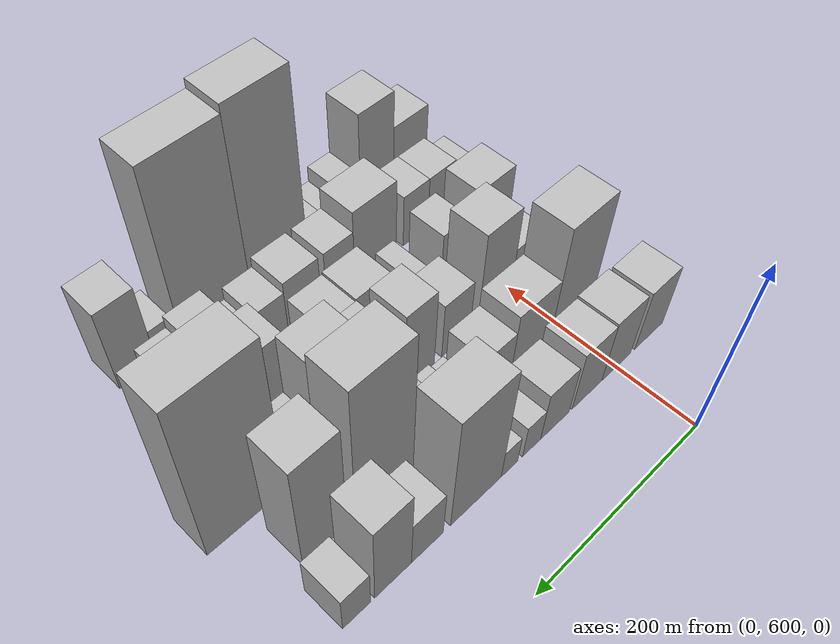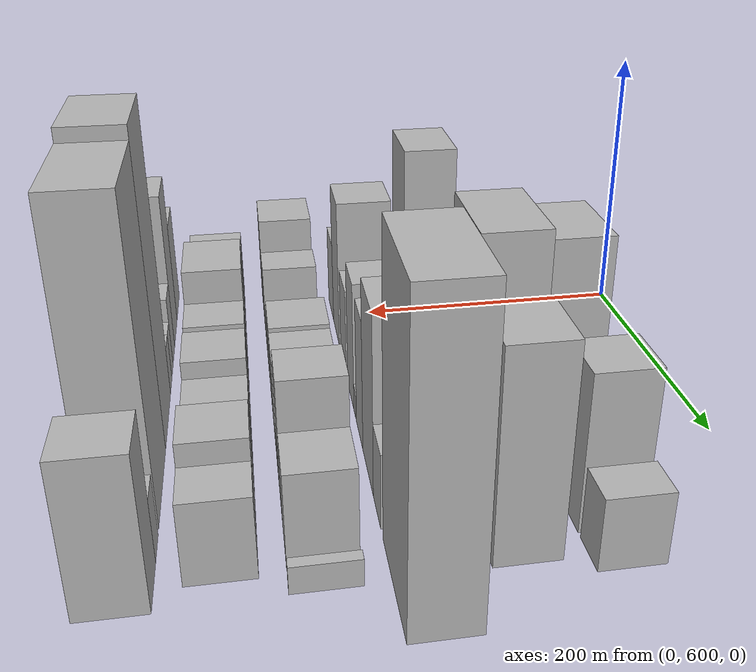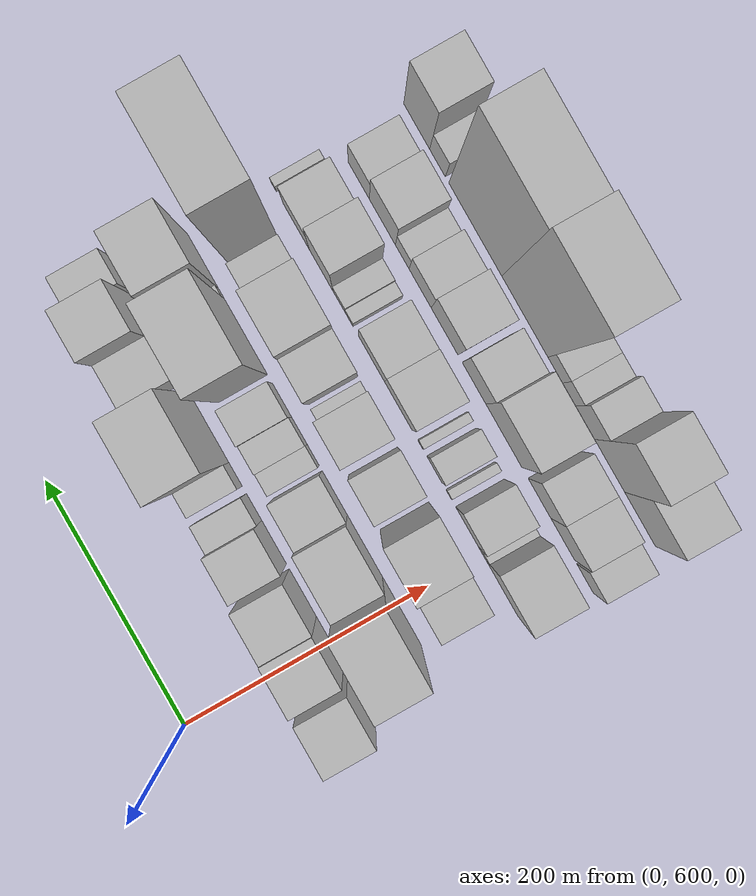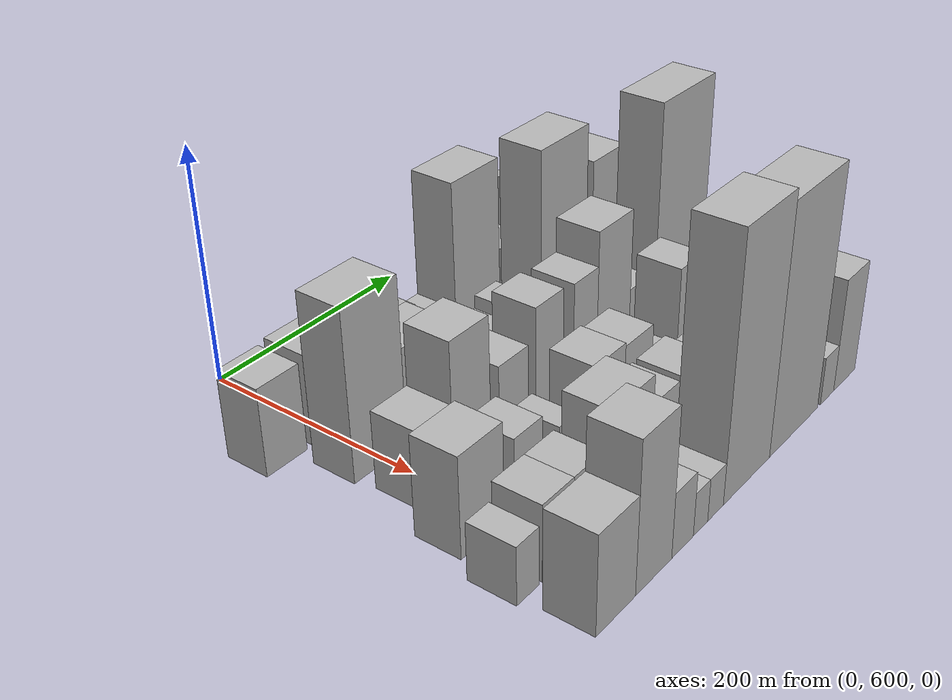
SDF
<sdf version="1.6">
 <world name="default">
  <model name="building_38">
   <static>1</static>
   <pose>100.0000 555.1416 0 0.000000 0.000000 0.000000</pose>
   <link name="link">
    <pose>0 0 37.50 0 0 0</pose>
    <collision name="collision"><geometry><box><size>40.0000 39.9015 75.0000</size></box></geometry></collision>
    <visual name="visual">
     <cast_shadows>0</cast_shadows>
     <geometry><box><size>40.0000 39.9015 75.0000</size></box></geometry>
     <material>
      <script>
       <uri>model://HANNAS_wall/materials/scripts</uri>
       <uri>model://HANNAS_wall/materials/textures</uri>
       <name>vrc/HANNAS_wall</name>
      </script>
     </material>
    </visual>
   </link>
  </model>
  <model name="building_39">
   <static>1</static>
   <pose>100.0000 600.7138 0 0.000000 0.000000 0.000000</pose>
   <link name="link">
    <pose>0 0 39.00 0 0 0</pose>
    <collision name="collision"><geometry><box><size>40.0000 39.2430 78.0000</size></box></geometry></collision>
    <visual name="visual">
     <cast_shadows>0</cast_shadows>
     <geometry><box><size>40.0000 39.2430 78.0000</size></box></geometry>
     <material>
      <script>
       <uri>model://HANNAS_wall/materials/scripts</uri>
       <uri>model://HANNAS_wall/materials/textures</uri>
       <name>vrc/HANNAS_wall</name>
      </script>
     </material>
    </visual>
   </link>
  </model>
  <model name="building_40">
   <static>1</static>
   <pose>100.0000 639.8418 0 0.000000 0.000000 0.000000</pose>
   <link name="link">
    <pose>0 0 37.50 0 0 0</pose>
    <collision name="collision"><geometry><box><size>40.0000 39.0130 75.0000</size></box></geometry></collision>
    <visual name="visual">
     <cast_shadows>0</cast_shadows>
     <geometry><box><size>40.0000 39.0130 75.0000</size></box></geometry>
     <material>
      <script>
       <uri>model://HANNAS_wall/materials/scripts</uri>
       <uri>model://HANNAS_wall/materials/textures</uri>
       <name>vrc/HANNAS_wall</name>
      </script>
     </material>
    </visual>
   </link>
  </model>
  <model name="building_41">
   <static>1</static>
   <pose>100.0000 681.1982 0 0.000000 0.000000 0.000000</pose>
   <link name="link">
    <pose>0 0 31.50 0 0 0</pose>
    <collision name="collision"><geometry><box><size>40.0000 35.6999 63.0000</size></box></geometry></collision>
    <visual name="visual">
     <cast_shadows>0</cast_shadows>
     <geometry><box><size>40.0000 35.6999 63.0000</size></box></geometry>
     <material>
      <script>
       <uri>model://HANNAS_wall/materials/scripts</uri>
       <uri>model://HANNAS_wall/materials/textures</uri>
       <name>vrc/HANNAS_wall</name>
      </script>
     </material>
    </visual>
   </link>
  </model>
  <model name="building_42">
   <static>1</static>
   <pose>100.0000 710.0597 0 0.000000 0.000000 0.000000</pose>
   <link name="link">
    <pose>0 0 21.00 0 0 0</pose>
    <collision name="collision"><geometry><box><size>40.0000 22.0230 42.0000</size></box></geometry></collision>
    <visual name="visual">
     <cast_shadows>0</cast_shadows>
     <geometry><box><size>40.0000 22.0230 42.0000</size></box></geometry>
     <material>
      <script>
       <uri>model://HANNAS_wall/materials/scripts</uri>
       <uri>model://HANNAS_wall/materials/textures</uri>
       <name>vrc/HANNAS_wall</name>
      </script>
     </material>
    </visual>
   </link>
  </model>
  <model name="building_43">
   <static>1</static>
   <pose>100.0000 736.7311 0 0.000000 0.000000 0.000000</pose>
   <link name="link">
    <pose>0 0 18.00 0 0 0</pose>
    <collision name="collision"><geometry><box><size>40.0000 19.3199 36.0000</size></box></geometry></collision>
    <visual name="visual">
     <cast_shadows>0</cast_shadows>
     <geometry><box><size>40.0000 19.3199 36.0000</size></box></geometry>
     <material>
      <script>
       <uri>model://HANNAS_wall/materials/scripts</uri>
       <uri>model://HANNAS_wall/materials/textures</uri>
       <name>vrc/HANNAS_wall</name>
      </script>
     </material>
    </visual>
   </link>
  </model>
  <model name="building_44">
   <static>1</static>
   <pose>100.0000 775.1421 0 0.000000 0.000000 0.000000</pose>
   <link name="link">
    <pose>0 0 73.50 0 0 0</pose>
    <collision name="collision"><geometry><box><size>40.0000 57.5021 147.0000</size></box></geometry></collision>
    <visual name="visual">
     <cast_shadows>0</cast_shadows>
     <geometry><box><size>40.0000 57.5021 147.0000</size></box></geometry>
     <material>
      <script>
       <uri>model://HANNAS_wall/materials/scripts</uri>
       <uri>model://HANNAS_wall/materials/textures</uri>
       <name>vrc/HANNAS_wall</name>
      </script>
     </material>
    </visual>
   </link>
  </model>
  <model name="building_45">
   <static>1</static>
   <pose>100.0000 828.8393 0 0.000000 0.000000 0.000000</pose>
   <link name="link">
    <pose>0 0 30.00 0 0 0</pose>
    <collision name="collision"><geometry><box><size>40.0000 33.8922 60.0000</size></box></geometry></collision>
    <visual name="visual">
     <cast_shadows>0</cast_shadows>
     <geometry><box><size>40.0000 33.8922 60.0000</size></box></geometry>
     <material>
      <script>
       <uri>model://HANNAS_wall/materials/scripts</uri>
       <uri>model://HANNAS_wall/materials/textures</uri>
       <name>vrc/HANNAS_wall</name>
      </script>
     </material>
    </visual>
   </link>
  </model>
  <model name="building_46">
   <static>1</static>
   <pose>100.0000 864.5744 0 0.000000 0.000000 0.000000</pose>
   <link name="link">
    <pose>0 0 52.50 0 0 0</pose>
    <collision name="collision"><geometry><box><size>40.0000 37.5782 105.0000</size></box></geometry></collision>
    <visual name="visual">
     <cast_shadows>0</cast_shadows>
     <geometry><box><size>40.0000 37.5782 105.0000</size></box></geometry>
     <material>
      <script>
       <uri>model://HANNAS_wall/materials/scripts</uri>
       <uri>model://HANNAS_wall/materials/textures</uri>
       <name>vrc/HANNAS_wall</name>
      </script>
     </material>
    </visual>
   </link>
  </model>
  <model name="building_47">
   <static>1</static>
   <pose>100.0000 901.0511 0 0.000000 0.000000 0.000000</pose>
   <link name="link">
    <pose>0 0 24.00 0 0 0</pose>
    <collision name="collision"><geometry><box><size>40.0000 27.3753 48.0000</size></box></geometry></collision>
    <visual name="visual">
     <cast_shadows>0</cast_shadows>
     <geometry><box><size>40.0000 27.3753 48.0000</size></box></geometry>
     <material>
      <script>
       <uri>model://HANNAS_wall/materials/scripts</uri>
       <uri>model://HANNAS_wall/materials/textures</uri>
       <name>vrc/HANNAS_wall</name>
      </script>
     </material>
    </visual>
   </link>
  </model>
  <model name="building_90">
   <static>1</static>
   <pose>155.0000 594.1640 0 0.000000 0.000000 0.000000</pose>
   <link name="link">
    <pose>0 0 72.00 0 0 0</pose>
    <collision name="collision"><geometry><box><size>40.0000 55.7255 144.0000</size></box></geometry></collision>
    <visual name="visual">
     <cast_shadows>0</cast_shadows>
     <geometry><box><size>40.0000 55.7255 144.0000</size></box></geometry>
     <material>
      <script>
       <uri>model://HANNAS_wall/materials/scripts</uri>
       <uri>model://HANNAS_wall/materials/textures</uri>
       <name>vrc/HANNAS_wall</name>
      </script>
     </material>
    </visual>
   </link>
  </model>
  <model name="building_91">
   <static>1</static>
   <pose>155.0000 647.2074 0 0.000000 0.000000 0.000000</pose>
   <link name="link">
    <pose>0 0 42.00 0 0 0</pose>
    <collision name="collision"><geometry><box><size>40.0000 50.3614 84.0000</size></box></geometry></collision>
    <visual name="visual">
     <cast_shadows>0</cast_shadows>
     <geometry><box><size>40.0000 50.3614 84.0000</size></box></geometry>
     <material>
      <script>
       <uri>model://HANNAS_wall/materials/scripts</uri>
       <uri>model://HANNAS_wall/materials/textures</uri>
       <name>vrc/HANNAS_wall</name>
      </script>
     </material>
    </visual>
   </link>
  </model>
  <model name="building_92">
   <static>1</static>
   <pose>155.0000 690.4936 0 0.000000 0.000000 0.000000</pose>
   <link name="link">
    <pose>0 0 31.50 0 0 0</pose>
    <collision name="collision"><geometry><box><size>40.0000 36.2110 63.0000</size></box></geometry></collision>
    <visual name="visual">
     <cast_shadows>0</cast_shadows>
     <geometry><box><size>40.0000 36.2110 63.0000</size></box></geometry>
     <material>
      <script>
       <uri>model://HANNAS_wall/materials/scripts</uri>
       <uri>model://HANNAS_wall/materials/textures</uri>
       <name>vrc/HANNAS_wall</name>
      </script>
     </material>
    </visual>
   </link>
  </model>
  <model name="building_93">
   <static>1</static>
   <pose>155.0000 721.2808 0 0.000000 0.000000 0.000000</pose>
   <link name="link">
    <pose>0 0 16.50 0 0 0</pose>
    <collision name="collision"><geometry><box><size>40.0000 17.3634 33.0000</size></box></geometry></collision>
    <visual name="visual">
     <cast_shadows>0</cast_shadows>
     <geometry><box><size>40.0000 17.3634 33.0000</size></box></geometry>
     <material>
      <script>
       <uri>model://HANNAS_wall/materials/scripts</uri>
       <uri>model://HANNAS_wall/materials/textures</uri>
       <name>vrc/HANNAS_wall</name>
      </script>
     </material>
    </visual>
   </link>
  </model>
  <model name="building_94">
   <static>1</static>
   <pose>155.0000 741.1525 0 0.000000 0.000000 0.000000</pose>
   <link name="link">
    <pose>0 0 19.50 0 0 0</pose>
    <collision name="collision"><geometry><box><size>40.0000 22.3801 39.0000</size></box></geometry></collision>
    <visual name="visual">
     <cast_shadows>0</cast_shadows>
     <geometry><box><size>40.0000 22.3801 39.0000</size></box></geometry>
     <material>
      <script>
       <uri>model://HANNAS_wall/materials/scripts</uri>
       <uri>model://HANNAS_wall/materials/textures</uri>
       <name>vrc/HANNAS_wall</name>
      </script>
     </material>
    </visual>
   </link>
  </model>
  <model name="building_95">
   <static>1</static>
   <pose>155.0000 766.3172 0 0.000000 0.000000 0.000000</pose>
   <link name="link">
    <pose>0 0 25.50 0 0 0</pose>
    <collision name="collision"><geometry><box><size>40.0000 27.9492 51.0000</size></box></geometry></collision>
    <visual name="visual">
     <cast_shadows>0</cast_shadows>
     <geometry><box><size>40.0000 27.9492 51.0000</size></box></geometry>
     <material>
      <script>
       <uri>model://HANNAS_wall/materials/scripts</uri>
       <uri>model://HANNAS_wall/materials/textures</uri>
       <name>vrc/HANNAS_wall</name>
      </script>
     </material>
    </visual>
   </link>
  </model>
  <model name="building_96">
   <static>1</static>
   <pose>155.0000 818.4649 0 0.000000 0.000000 0.000000</pose>
   <link name="link">
    <pose>0 0 87.00 0 0 0</pose>
    <collision name="collision"><geometry><box><size>40.0000 62.3463 174.0000</size></box></geometry></collision>
    <visual name="visual">
     <cast_shadows>0</cast_shadows>
     <geometry><box><size>40.0000 62.3463 174.0000</size></box></geometry>
     <material>
      <script>
       <uri>model://HANNAS_wall/materials/scripts</uri>
       <uri>model://HANNAS_wall/materials/textures</uri>
       <name>vrc/HANNAS_wall</name>
      </script>
     </material>
    </visual>
   </link>
  </model>
  <model name="building_97">
   <static>1</static>
   <pose>155.0000 853.9290 0 0.000000 0.000000 0.000000</pose>
   <link name="link">
    <pose>0 0 10.50 0 0 0</pose>
    <collision name="collision"><geometry><box><size>40.0000 8.5818 21.0000</size></box></geometry></collision>
    <visual name="visual">
     <cast_shadows>0</cast_shadows>
     <geometry><box><size>40.0000 8.5818 21.0000</size></box></geometry>
     <material>
      <script>
       <uri>model://HANNAS_wall/materials/scripts</uri>
       <uri>model://HANNAS_wall/materials/textures</uri>
       <name>vrc/HANNAS_wall</name>
      </script>
     </material>
    </visual>
   </link>
  </model>
  <model name="building_98">
   <static>1</static>
   <pose>155.0000 880.5888 0 0.000000 0.000000 0.000000</pose>
   <link name="link">
    <pose>0 0 69.00 0 0 0</pose>
    <collision name="collision"><geometry><box><size>40.0000 44.7378 138.0000</size></box></geometry></collision>
    <visual name="visual">
     <cast_shadows>0</cast_shadows>
     <geometry><box><size>40.0000 44.7378 138.0000</size></box></geometry>
     <material>
      <script>
       <uri>model://HANNAS_wall/materials/scripts</uri>
       <uri>model://HANNAS_wall/materials/textures</uri>
       <name>vrc/HANNAS_wall</name>
      </script>
     </material>
    </visual>
   </link>
  </model>
  <model name="building_144">
   <static>1</static>
   <pose>210.0000 590.6155 0 0.000000 0.000000 0.000000</pose>
   <link name="link">
    <pose>0 0 33.00 0 0 0</pose>
    <collision name="collision"><geometry><box><size>40.0000 37.5603 66.0000</size></box></geometry></collision>
    <visual name="visual">
     <cast_shadows>0</cast_shadows>
     <geometry><box><size>40.0000 37.5603 66.0000</size></box></geometry>
     <material>
      <script>
       <uri>model://HANNAS_wall/materials/scripts</uri>
       <uri>model://HANNAS_wall/materials/textures</uri>
       <name>vrc/HANNAS_wall</name>
      </script>
     </material>
    </visual>
   </link>
  </model>
  <model name="building_145">
   <static>1</static>
   <pose>210.0000 630.5248 0 0.000000 0.000000 0.000000</pose>
   <link name="link">
    <pose>0 0 58.50 0 0 0</pose>
    <collision name="collision"><geometry><box><size>40.0000 42.2582 117.0000</size></box></geometry></collision>
    <visual name="visual">
     <cast_shadows>0</cast_shadows>
     <geometry><box><size>40.0000 42.2582 117.0000</size></box></geometry>
     <material>
      <script>
       <uri>model://HANNAS_wall/materials/scripts</uri>
       <uri>model://HANNAS_wall/materials/textures</uri>
       <name>vrc/HANNAS_wall</name>
      </script>
     </material>
    </visual>
   </link>
  </model>
  <model name="building_146">
   <static>1</static>
   <pose>210.0000 679.1802 0 0.000000 0.000000 0.000000</pose>
   <link name="link">
    <pose>0 0 34.50 0 0 0</pose>
    <collision name="collision"><geometry><box><size>40.0000 35.0526 69.0000</size></box></geometry></collision>
    <visual name="visual">
     <cast_shadows>0</cast_shadows>
     <geometry><box><size>40.0000 35.0526 69.0000</size></box></geometry>
     <material>
      <script>
       <uri>model://HANNAS_wall/materials/scripts</uri>
       <uri>model://HANNAS_wall/materials/textures</uri>
       <name>vrc/HANNAS_wall</name>
      </script>
     </material>
    </visual>
   </link>
  </model>
  <model name="building_147">
   <static>1</static>
   <pose>210.0000 723.1696 0 0.000000 0.000000 0.000000</pose>
   <link name="link">
    <pose>0 0 48.00 0 0 0</pose>
    <collision name="collision"><geometry><box><size>40.0000 34.9262 96.0000</size></box></geometry></collision>
    <visual name="visual">
     <cast_shadows>0</cast_shadows>
     <geometry><box><size>40.0000 34.9262 96.0000</size></box></geometry>
     <material>
      <script>
       <uri>model://HANNAS_wall/materials/scripts</uri>
       <uri>model://HANNAS_wall/materials/textures</uri>
       <name>vrc/HANNAS_wall</name>
      </script>
     </material>
    </visual>
   </link>
  </model>
  <model name="building_148">
   <static>1</static>
   <pose>210.0000 745.4252 0 0.000000 0.000000 0.000000</pose>
   <link name="link">
    <pose>0 0 10.50 0 0 0</pose>
    <collision name="collision"><geometry><box><size>40.0000 9.5850 21.0000</size></box></geometry></collision>
    <visual name="visual">
     <cast_shadows>0</cast_shadows>
     <geometry><box><size>40.0000 9.5850 21.0000</size></box></geometry>
     <material>
      <script>
       <uri>model://HANNAS_wall/materials/scripts</uri>
       <uri>model://HANNAS_wall/materials/textures</uri>
       <name>vrc/HANNAS_wall</name>
      </script>
     </material>
    </visual>
   </link>
  </model>
  <model name="building_149">
   <static>1</static>
   <pose>210.0000 770.2569 0 0.000000 0.000000 0.000000</pose>
   <link name="link">
    <pose>0 0 46.50 0 0 0</pose>
    <collision name="collision"><geometry><box><size>40.0000 32.0783 93.0000</size></box></geometry></collision>
    <visual name="visual">
     <cast_shadows>0</cast_shadows>
     <geometry><box><size>40.0000 32.0783 93.0000</size></box></geometry>
     <material>
      <script>
       <uri>model://HANNAS_wall/materials/scripts</uri>
       <uri>model://HANNAS_wall/materials/textures</uri>
       <name>vrc/HANNAS_wall</name>
      </script>
     </material>
    </visual>
   </link>
  </model>
  <model name="building_150">
   <static>1</static>
   <pose>210.0000 809.5594 0 0.000000 0.000000 0.000000</pose>
   <link name="link">
    <pose>0 0 61.50 0 0 0</pose>
    <collision name="collision"><geometry><box><size>40.0000 46.5267 123.0000</size></box></geometry></collision>
    <visual name="visual">
     <cast_shadows>0</cast_shadows>
     <geometry><box><size>40.0000 46.5267 123.0000</size></box></geometry>
     <material>
      <script>
       <uri>model://HANNAS_wall/materials/scripts</uri>
       <uri>model://HANNAS_wall/materials/textures</uri>
       <name>vrc/HANNAS_wall</name>
      </script>
     </material>
    </visual>
   </link>
  </model>
  <model name="building_151">
   <static>1</static>
   <pose>210.0000 847.6196 0 0.000000 0.000000 0.000000</pose>
   <link name="link">
    <pose>0 0 25.50 0 0 0</pose>
    <collision name="collision"><geometry><box><size>40.0000 29.5937 51.0000</size></box></geometry></collision>
    <visual name="visual">
     <cast_shadows>0</cast_shadows>
     <geometry><box><size>40.0000 29.5937 51.0000</size></box></geometry>
     <material>
      <script>
       <uri>model://HANNAS_wall/materials/scripts</uri>
       <uri>model://HANNAS_wall/materials/textures</uri>
       <name>vrc/HANNAS_wall</name>
      </script>
     </material>
    </visual>
   </link>
  </model>
  <model name="building_152">
   <static>1</static>
   <pose>210.0000 909.0452 0 0.000000 0.000000 0.000000</pose>
   <link name="link">
    <pose>0 0 99.00 0 0 0</pose>
    <collision name="collision"><geometry><box><size>40.0000 77.2575 198.0000</size></box></geometry></collision>
    <visual name="visual">
     <cast_shadows>0</cast_shadows>
     <geometry><box><size>40.0000 77.2575 198.0000</size></box></geometry>
     <material>
      <script>
       <uri>model://HANNAS_wall/materials/scripts</uri>
       <uri>model://HANNAS_wall/materials/textures</uri>
       <name>vrc/HANNAS_wall</name>
      </script>
     </material>
    </visual>
   </link>
  </model>
  <model name="building_195">
   <static>1</static>
   <pose>265.0000 572.6271 0 0.000000 0.000000 0.000000</pose>
   <link name="link">
    <pose>0 0 42.00 0 0 0</pose>
    <collision name="collision"><geometry><box><size>40.0000 46.0823 84.0000</size></box></geometry></collision>
    <visual name="visual">
     <cast_shadows>0</cast_shadows>
     <geometry><box><size>40.0000 46.0823 84.0000</size></box></geometry>
     <material>
      <script>
       <uri>model://HANNAS_wall/materials/scripts</uri>
       <uri>model://HANNAS_wall/materials/textures</uri>
       <name>vrc/HANNAS_wall</name>
      </script>
     </material>
    </visual>
   </link>
  </model>
  <model name="building_196">
   <static>1</static>
   <pose>265.0000 601.3978 0 0.000000 0.000000 0.000000</pose>
   <link name="link">
    <pose>0 0 13.50 0 0 0</pose>
    <collision name="collision"><geometry><box><size>40.0000 11.4591 27.0000</size></box></geometry></collision>
    <visual name="visual">
     <cast_shadows>0</cast_shadows>
     <geometry><box><size>40.0000 11.4591 27.0000</size></box></geometry>
     <material>
      <script>
       <uri>model://HANNAS_wall/materials/scripts</uri>
       <uri>model://HANNAS_wall/materials/textures</uri>
       <name>vrc/HANNAS_wall</name>
      </script>
     </material>
    </visual>
   </link>
  </model>
  <model name="building_197">
   <static>1</static>
   <pose>265.0000 623.1608 0 0.000000 0.000000 0.000000</pose>
   <link name="link">
    <pose>0 0 31.50 0 0 0</pose>
    <collision name="collision"><geometry><box><size>40.0000 32.0669 63.0000</size></box></geometry></collision>
    <visual name="visual">
     <cast_shadows>0</cast_shadows>
     <geometry><box><size>40.0000 32.0669 63.0000</size></box></geometry>
     <material>
      <script>
       <uri>model://HANNAS_wall/materials/scripts</uri>
       <uri>model://HANNAS_wall/materials/textures</uri>
       <name>vrc/HANNAS_wall</name>
      </script>
     </material>
    </visual>
   </link>
  </model>
  <model name="building_198">
   <static>1</static>
   <pose>265.0000 649.7334 0 0.000000 0.000000 0.000000</pose>
   <link name="link">
    <pose>0 0 7.50 0 0 0</pose>
    <collision name="collision"><geometry><box><size>40.0000 7.0781 15.0000</size></box></geometry></collision>
    <visual name="visual">
     <cast_shadows>0</cast_shadows>
     <geometry><box><size>40.0000 7.0781 15.0000</size></box></geometry>
     <material>
      <script>
       <uri>model://HANNAS_wall/materials/scripts</uri>
       <uri>model://HANNAS_wall/materials/textures</uri>
       <name>vrc/HANNAS_wall</name>
      </script>
     </material>
    </visual>
   </link>
  </model>
  <model name="building_199">
   <static>1</static>
   <pose>265.0000 670.0539 0 0.000000 0.000000 0.000000</pose>
   <link name="link">
    <pose>0 0 21.00 0 0 0</pose>
    <collision name="collision"><geometry><box><size>40.0000 21.5629 42.0000</size></box></geometry></collision>
    <visual name="visual">
     <cast_shadows>0</cast_shadows>
     <geometry><box><size>40.0000 21.5629 42.0000</size></box></geometry>
     <material>
      <script>
       <uri>model://HANNAS_wall/materials/scripts</uri>
       <uri>model://HANNAS_wall/materials/textures</uri>
       <name>vrc/HANNAS_wall</name>
      </script>
     </material>
    </visual>
   </link>
  </model>
  <model name="building_200">
   <static>1</static>
   <pose>265.0000 690.4493 0 0.000000 0.000000 0.000000</pose>
   <link name="link">
    <pose>0 0 9.00 0 0 0</pose>
    <collision name="collision"><geometry><box><size>40.0000 7.2279 18.0000</size></box></geometry></collision>
    <visual name="visual">
     <cast_shadows>0</cast_shadows>
     <geometry><box><size>40.0000 7.2279 18.0000</size></box></geometry>
     <material>
      <script>
       <uri>model://HANNAS_wall/materials/scripts</uri>
       <uri>model://HANNAS_wall/materials/textures</uri>
       <name>vrc/HANNAS_wall</name>
      </script>
     </material>
    </visual>
   </link>
  </model>
  <model name="building_201">
   <static>1</static>
   <pose>265.0000 721.7785 0 0.000000 0.000000 0.000000</pose>
   <link name="link">
    <pose>0 0 34.50 0 0 0</pose>
    <collision name="collision"><geometry><box><size>40.0000 39.4305 69.0000</size></box></geometry></collision>
    <visual name="visual">
     <cast_shadows>0</cast_shadows>
     <geometry><box><size>40.0000 39.4305 69.0000</size></box></geometry>
     <material>
      <script>
       <uri>model://HANNAS_wall/materials/scripts</uri>
       <uri>model://HANNAS_wall/materials/textures</uri>
       <name>vrc/HANNAS_wall</name>
      </script>
     </material>
    </visual>
   </link>
  </model>
  <model name="building_202">
   <static>1</static>
   <pose>265.0000 760.2719 0 0.000000 0.000000 0.000000</pose>
   <link name="link">
    <pose>0 0 33.00 0 0 0</pose>
    <collision name="collision"><geometry><box><size>40.0000 37.5563 66.0000</size></box></geometry></collision>
    <visual name="visual">
     <cast_shadows>0</cast_shadows>
     <geometry><box><size>40.0000 37.5563 66.0000</size></box></geometry>
     <material>
      <script>
       <uri>model://HANNAS_wall/materials/scripts</uri>
       <uri>model://HANNAS_wall/materials/textures</uri>
       <name>vrc/HANNAS_wall</name>
      </script>
     </material>
    </visual>
   </link>
  </model>
  <model name="building_203">
   <static>1</static>
   <pose>265.0000 792.6421 0 0.000000 0.000000 0.000000</pose>
   <link name="link">
    <pose>0 0 12.00 0 0 0</pose>
    <collision name="collision"><geometry><box><size>40.0000 11.1842 24.0000</size></box></geometry></collision>
    <visual name="visual">
     <cast_shadows>0</cast_shadows>
     <geometry><box><size>40.0000 11.1842 24.0000</size></box></geometry>
     <material>
      <script>
       <uri>model://HANNAS_wall/materials/scripts</uri>
       <uri>model://HANNAS_wall/materials/textures</uri>
       <name>vrc/HANNAS_wall</name>
      </script>
     </material>
    </visual>
   </link>
  </model>
  <model name="building_204">
   <static>1</static>
   <pose>265.0000 807.0411 0 0.000000 0.000000 0.000000</pose>
   <link name="link">
    <pose>0 0 15.00 0 0 0</pose>
    <collision name="collision"><geometry><box><size>40.0000 17.6137 30.0000</size></box></geometry></collision>
    <visual name="visual">
     <cast_shadows>0</cast_shadows>
     <geometry><box><size>40.0000 17.6137 30.0000</size></box></geometry>
     <material>
      <script>
       <uri>model://HANNAS_wall/materials/scripts</uri>
       <uri>model://HANNAS_wall/materials/textures</uri>
       <name>vrc/HANNAS_wall</name>
      </script>
     </material>
    </visual>
   </link>
  </model>
  <model name="building_205">
   <static>1</static>
   <pose>265.0000 832.9008 0 0.000000 0.000000 0.000000</pose>
   <link name="link">
    <pose>0 0 48.00 0 0 0</pose>
    <collision name="collision"><geometry><box><size>40.0000 34.1057 96.0000</size></box></geometry></collision>
    <visual name="visual">
     <cast_shadows>0</cast_shadows>
     <geometry><box><size>40.0000 34.1057 96.0000</size></box></geometry>
     <material>
      <script>
       <uri>model://HANNAS_wall/materials/scripts</uri>
       <uri>model://HANNAS_wall/materials/textures</uri>
       <name>vrc/HANNAS_wall</name>
      </script>
     </material>
    </visual>
   </link>
  </model>
  <model name="building_206">
   <static>1</static>
   <pose>265.0000 868.7814 0 0.000000 0.000000 0.000000</pose>
   <link name="link">
    <pose>0 0 31.50 0 0 0</pose>
    <collision name="collision"><geometry><box><size>40.0000 37.6555 63.0000</size></box></geometry></collision>
    <visual name="visual">
     <cast_shadows>0</cast_shadows>
     <geometry><box><size>40.0000 37.6555 63.0000</size></box></geometry>
     <material>
      <script>
       <uri>model://HANNAS_wall/materials/scripts</uri>
       <uri>model://HANNAS_wall/materials/textures</uri>
       <name>vrc/HANNAS_wall</name>
      </script>
     </material>
    </visual>
   </link>
  </model>
  <model name="building_207">
   <static>1</static>
   <pose>265.0000 901.3606 0 0.000000 0.000000 0.000000</pose>
   <link name="link">
    <pose>0 0 9.00 0 0 0</pose>
    <collision name="collision"><geometry><box><size>40.0000 7.5029 18.0000</size></box></geometry></collision>
    <visual name="visual">
     <cast_shadows>0</cast_shadows>
     <geometry><box><size>40.0000 7.5029 18.0000</size></box></geometry>
     <material>
      <script>
       <uri>model://HANNAS_wall/materials/scripts</uri>
       <uri>model://HANNAS_wall/materials/textures</uri>
       <name>vrc/HANNAS_wall</name>
      </script>
     </material>
    </visual>
   </link>
  </model>
  <model name="building_249">
   <static>1</static>
   <pose>320.0000 549.0645 0 0.000000 0.000000 0.000000</pose>
   <link name="link">
    <pose>0 0 24.00 0 0 0</pose>
    <collision name="collision"><geometry><box><size>40.0000 24.0100 48.0000</size></box></geometry></collision>
    <visual name="visual">
     <cast_shadows>0</cast_shadows>
     <geometry><box><size>40.0000 24.0100 48.0000</size></box></geometry>
     <material>
      <script>
       <uri>model://HANNAS_wall/materials/scripts</uri>
       <uri>model://HANNAS_wall/materials/textures</uri>
       <name>vrc/HANNAS_wall</name>
      </script>
     </material>
    </visual>
   </link>
  </model>
  <model name="building_250">
   <static>1</static>
   <pose>320.0000 581.3247 0 0.000000 0.000000 0.000000</pose>
   <link name="link">
    <pose>0 0 31.50 0 0 0</pose>
    <collision name="collision"><geometry><box><size>40.0000 34.5103 63.0000</size></box></geometry></collision>
    <visual name="visual">
     <cast_shadows>0</cast_shadows>
     <geometry><box><size>40.0000 34.5103 63.0000</size></box></geometry>
     <material>
      <script>
       <uri>model://HANNAS_wall/materials/scripts</uri>
       <uri>model://HANNAS_wall/materials/textures</uri>
       <name>vrc/HANNAS_wall</name>
      </script>
     </material>
    </visual>
   </link>
  </model>
  <model name="building_251">
   <static>1</static>
   <pose>320.0000 614.9283 0 0.000000 0.000000 0.000000</pose>
   <link name="link">
    <pose>0 0 31.50 0 0 0</pose>
    <collision name="collision"><geometry><box><size>40.0000 32.6970 63.0000</size></box></geometry></collision>
    <visual name="visual">
     <cast_shadows>0</cast_shadows>
     <geometry><box><size>40.0000 32.6970 63.0000</size></box></geometry>
     <material>
      <script>
       <uri>model://HANNAS_wall/materials/scripts</uri>
       <uri>model://HANNAS_wall/materials/textures</uri>
       <name>vrc/HANNAS_wall</name>
      </script>
     </material>
    </visual>
   </link>
  </model>
  <model name="building_252">
   <static>1</static>
   <pose>320.0000 666.3265 0 0.000000 0.000000 0.000000</pose>
   <link name="link">
    <pose>0 0 45.00 0 0 0</pose>
    <collision name="collision"><geometry><box><size>40.0000 52.0994 90.0000</size></box></geometry></collision>
    <visual name="visual">
     <cast_shadows>0</cast_shadows>
     <geometry><box><size>40.0000 52.0994 90.0000</size></box></geometry>
     <material>
      <script>
       <uri>model://HANNAS_wall/materials/scripts</uri>
       <uri>model://HANNAS_wall/materials/textures</uri>
       <name>vrc/HANNAS_wall</name>
      </script>
     </material>
    </visual>
   </link>
  </model>
  <model name="building_253">
   <static>1</static>
   <pose>320.0000 709.3947 0 0.000000 0.000000 0.000000</pose>
   <link name="link">
    <pose>0 0 33.00 0 0 0</pose>
    <collision name="collision"><geometry><box><size>40.0000 34.0369 66.0000</size></box></geometry></collision>
    <visual name="visual">
     <cast_shadows>0</cast_shadows>
     <geometry><box><size>40.0000 34.0369 66.0000</size></box></geometry>
     <material>
      <script>
       <uri>model://HANNAS_wall/materials/scripts</uri>
       <uri>model://HANNAS_wall/materials/textures</uri>
       <name>vrc/HANNAS_wall</name>
      </script>
     </material>
    </visual>
   </link>
  </model>
  <model name="building_254">
   <static>1</static>
   <pose>320.0000 751.7303 0 0.000000 0.000000 0.000000</pose>
   <link name="link">
    <pose>0 0 33.00 0 0 0</pose>
    <collision name="collision"><geometry><box><size>40.0000 38.6343 66.0000</size></box></geometry></collision>
    <visual name="visual">
     <cast_shadows>0</cast_shadows>
     <geometry><box><size>40.0000 38.6343 66.0000</size></box></geometry>
     <material>
      <script>
       <uri>model://HANNAS_wall/materials/scripts</uri>
       <uri>model://HANNAS_wall/materials/textures</uri>
       <name>vrc/HANNAS_wall</name>
      </script>
     </material>
    </visual>
   </link>
  </model>
  <model name="building_255">
   <static>1</static>
   <pose>320.0000 787.0581 0 0.000000 0.000000 0.000000</pose>
   <link name="link">
    <pose>0 0 27.00 0 0 0</pose>
    <collision name="collision"><geometry><box><size>40.0000 32.0214 54.0000</size></box></geometry></collision>
    <visual name="visual">
     <cast_shadows>0</cast_shadows>
     <geometry><box><size>40.0000 32.0214 54.0000</size></box></geometry>
     <material>
      <script>
       <uri>model://HANNAS_wall/materials/scripts</uri>
       <uri>model://HANNAS_wall/materials/textures</uri>
       <name>vrc/HANNAS_wall</name>
      </script>
     </material>
    </visual>
   </link>
  </model>
  <model name="building_256">
   <static>1</static>
   <pose>320.0000 812.9084 0 0.000000 0.000000 0.000000</pose>
   <link name="link">
    <pose>0 0 19.50 0 0 0</pose>
    <collision name="collision"><geometry><box><size>40.0000 19.6793 39.0000</size></box></geometry></collision>
    <visual name="visual">
     <cast_shadows>0</cast_shadows>
     <geometry><box><size>40.0000 19.6793 39.0000</size></box></geometry>
     <material>
      <script>
       <uri>model://HANNAS_wall/materials/scripts</uri>
       <uri>model://HANNAS_wall/materials/textures</uri>
       <name>vrc/HANNAS_wall</name>
      </script>
     </material>
    </visual>
   </link>
  </model>
  <model name="building_257">
   <static>1</static>
   <pose>320.0000 841.4395 0 0.000000 0.000000 0.000000</pose>
   <link name="link">
    <pose>0 0 34.50 0 0 0</pose>
    <collision name="collision"><geometry><box><size>40.0000 37.3829 69.0000</size></box></geometry></collision>
    <visual name="visual">
     <cast_shadows>0</cast_shadows>
     <geometry><box><size>40.0000 37.3829 69.0000</size></box></geometry>
     <material>
      <script>
       <uri>model://HANNAS_wall/materials/scripts</uri>
       <uri>model://HANNAS_wall/materials/textures</uri>
       <name>vrc/HANNAS_wall</name>
      </script>
     </material>
    </visual>
   </link>
  </model>
  <model name="building_258">
   <static>1</static>
   <pose>320.0000 875.4982 0 0.000000 0.000000 0.000000</pose>
   <link name="link">
    <pose>0 0 27.00 0 0 0</pose>
    <collision name="collision"><geometry><box><size>40.0000 30.7346 54.0000</size></box></geometry></collision>
    <visual name="visual">
     <cast_shadows>0</cast_shadows>
     <geometry><box><size>40.0000 30.7346 54.0000</size></box></geometry>
     <material>
      <script>
       <uri>model://HANNAS_wall/materials/scripts</uri>
       <uri>model://HANNAS_wall/materials/textures</uri>
       <name>vrc/HANNAS_wall</name>
      </script>
     </material>
    </visual>
   </link>
  </model>
  <model name="building_292">
   <static>1</static>
   <pose>375.0000 566.3394 0 0.000000 0.000000 0.000000</pose>
   <link name="link">
    <pose>0 0 40.50 0 0 0</pose>
    <collision name="collision"><geometry><box><size>40.0000 44.3908 81.0000</size></box></geometry></collision>
    <visual name="visual">
     <cast_shadows>0</cast_shadows>
     <geometry><box><size>40.0000 44.3908 81.0000</size></box></geometry>
     <material>
      <script>
       <uri>model://HANNAS_wall/materials/scripts</uri>
       <uri>model://HANNAS_wall/materials/textures</uri>
       <name>vrc/HANNAS_wall</name>
      </script>
     </material>
    </visual>
   </link>
  </model>
  <model name="building_293">
   <static>1</static>
   <pose>375.0000 610.2532 0 0.000000 0.000000 0.000000</pose>
   <link name="link">
    <pose>0 0 61.50 0 0 0</pose>
    <collision name="collision"><geometry><box><size>40.0000 43.4367 123.0000</size></box></geometry></collision>
    <visual name="visual">
     <cast_shadows>0</cast_shadows>
     <geometry><box><size>40.0000 43.4367 123.0000</size></box></geometry>
     <material>
      <script>
       <uri>model://HANNAS_wall/materials/scripts</uri>
       <uri>model://HANNAS_wall/materials/textures</uri>
       <name>vrc/HANNAS_wall</name>
      </script>
     </material>
    </visual>
   </link>
  </model>
  <model name="building_294">
   <static>1</static>
   <pose>375.0000 645.6508 0 0.000000 0.000000 0.000000</pose>
   <link name="link">
    <pose>0 0 27.00 0 0 0</pose>
    <collision name="collision"><geometry><box><size>40.0000 27.3584 54.0000</size></box></geometry></collision>
    <visual name="visual">
     <cast_shadows>0</cast_shadows>
     <geometry><box><size>40.0000 27.3584 54.0000</size></box></geometry>
     <material>
      <script>
       <uri>model://HANNAS_wall/materials/scripts</uri>
       <uri>model://HANNAS_wall/materials/textures</uri>
       <name>vrc/HANNAS_wall</name>
      </script>
     </material>
    </visual>
   </link>
  </model>
  <model name="building_295">
   <static>1</static>
   <pose>375.0000 668.7551 0 0.000000 0.000000 0.000000</pose>
   <link name="link">
    <pose>0 0 18.00 0 0 0</pose>
    <collision name="collision"><geometry><box><size>40.0000 18.8502 36.0000</size></box></geometry></collision>
    <visual name="visual">
     <cast_shadows>0</cast_shadows>
     <geometry><box><size>40.0000 18.8502 36.0000</size></box></geometry>
     <material>
      <script>
       <uri>model://HANNAS_wall/materials/scripts</uri>
       <uri>model://HANNAS_wall/materials/textures</uri>
       <name>vrc/HANNAS_wall</name>
      </script>
     </material>
    </visual>
   </link>
  </model>
  <model name="building_296">
   <static>1</static>
   <pose>375.0000 688.7660 0 0.000000 0.000000 0.000000</pose>
   <link name="link">
    <pose>0 0 18.00 0 0 0</pose>
    <collision name="collision"><geometry><box><size>40.0000 21.1716 36.0000</size></box></geometry></collision>
    <visual name="visual">
     <cast_shadows>0</cast_shadows>
     <geometry><box><size>40.0000 21.1716 36.0000</size></box></geometry>
     <material>
      <script>
       <uri>model://HANNAS_wall/materials/scripts</uri>
       <uri>model://HANNAS_wall/materials/textures</uri>
       <name>vrc/HANNAS_wall</name>
      </script>
     </material>
    </visual>
   </link>
  </model>
  <model name="building_297">
   <static>1</static>
   <pose>375.0000 732.6091 0 0.000000 0.000000 0.000000</pose>
   <link name="link">
    <pose>0 0 108.00 0 0 0</pose>
    <collision name="collision"><geometry><box><size>40.0000 66.5147 216.0000</size></box></geometry></collision>
    <visual name="visual">
     <cast_shadows>0</cast_shadows>
     <geometry><box><size>40.0000 66.5147 216.0000</size></box></geometry>
     <material>
      <script>
       <uri>model://HANNAS_wall/materials/scripts</uri>
       <uri>model://HANNAS_wall/materials/textures</uri>
       <name>vrc/HANNAS_wall</name>
      </script>
     </material>
    </visual>
   </link>
  </model>
  <model name="building_298">
   <static>1</static>
   <pose>375.0000 804.1145 0 0.000000 0.000000 0.000000</pose>
   <link name="link">
    <pose>0 0 103.50 0 0 0</pose>
    <collision name="collision"><geometry><box><size>40.0000 76.4961 207.0000</size></box></geometry></collision>
    <visual name="visual">
     <cast_shadows>0</cast_shadows>
     <geometry><box><size>40.0000 76.4961 207.0000</size></box></geometry>
     <material>
      <script>
       <uri>model://HANNAS_wall/materials/scripts</uri>
       <uri>model://HANNAS_wall/materials/textures</uri>
       <name>vrc/HANNAS_wall</name>
      </script>
     </material>
    </visual>
   </link>
  </model>
  <model name="building_299">
   <static>1</static>
   <pose>375.0000 858.6657 0 0.000000 0.000000 0.000000</pose>
   <link name="link">
    <pose>0 0 21.00 0 0 0</pose>
    <collision name="collision"><geometry><box><size>40.0000 22.6063 42.0000</size></box></geometry></collision>
    <visual name="visual">
     <cast_shadows>0</cast_shadows>
     <geometry><box><size>40.0000 22.6063 42.0000</size></box></geometry>
     <material>
      <script>
       <uri>model://HANNAS_wall/materials/scripts</uri>
       <uri>model://HANNAS_wall/materials/textures</uri>
       <name>vrc/HANNAS_wall</name>
      </script>
     </material>
    </visual>
   </link>
  </model>
  <model name="building_300">
   <static>1</static>
   <pose>375.0000 888.7013 0 0.000000 0.000000 0.000000</pose>
   <link name="link">
    <pose>0 0 49.50 0 0 0</pose>
    <collision name="collision"><geometry><box><size>40.0000 37.4649 99.0000</size></box></geometry></collision>
    <visual name="visual">
     <cast_shadows>0</cast_shadows>
     <geometry><box><size>40.0000 37.4649 99.0000</size></box></geometry>
     <material>
      <script>
       <uri>model://HANNAS_wall/materials/scripts</uri>
       <uri>model://HANNAS_wall/materials/textures</uri>
       <name>vrc/HANNAS_wall</name>
      </script>
     </material>
    </visual>
   </link>
  </model>
 </world>
</sdf>
